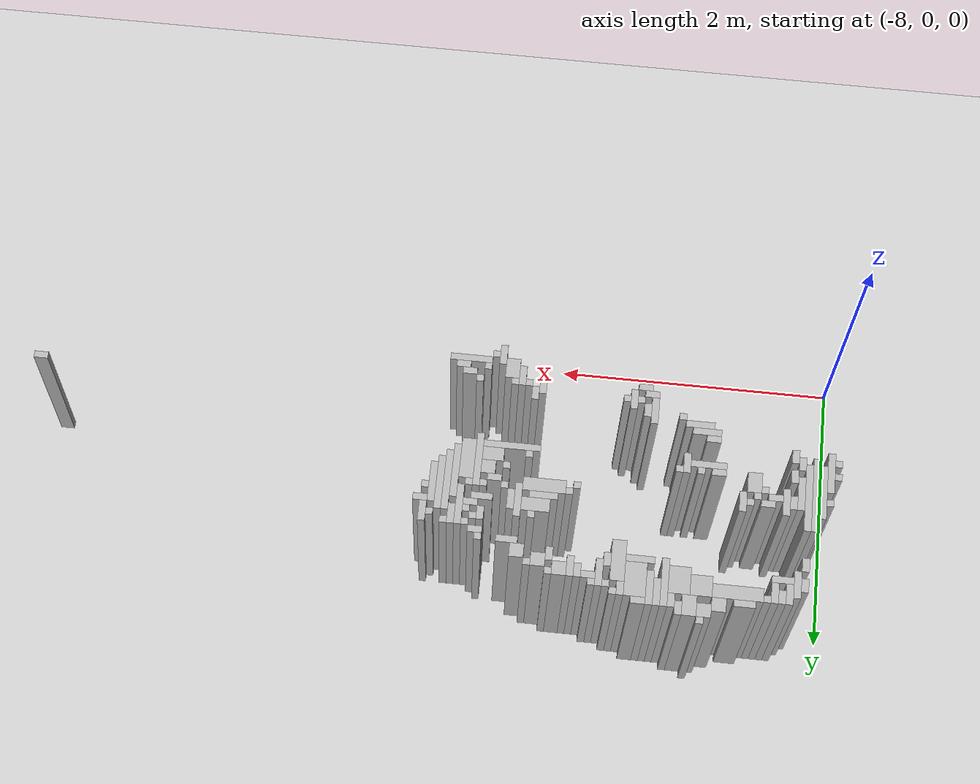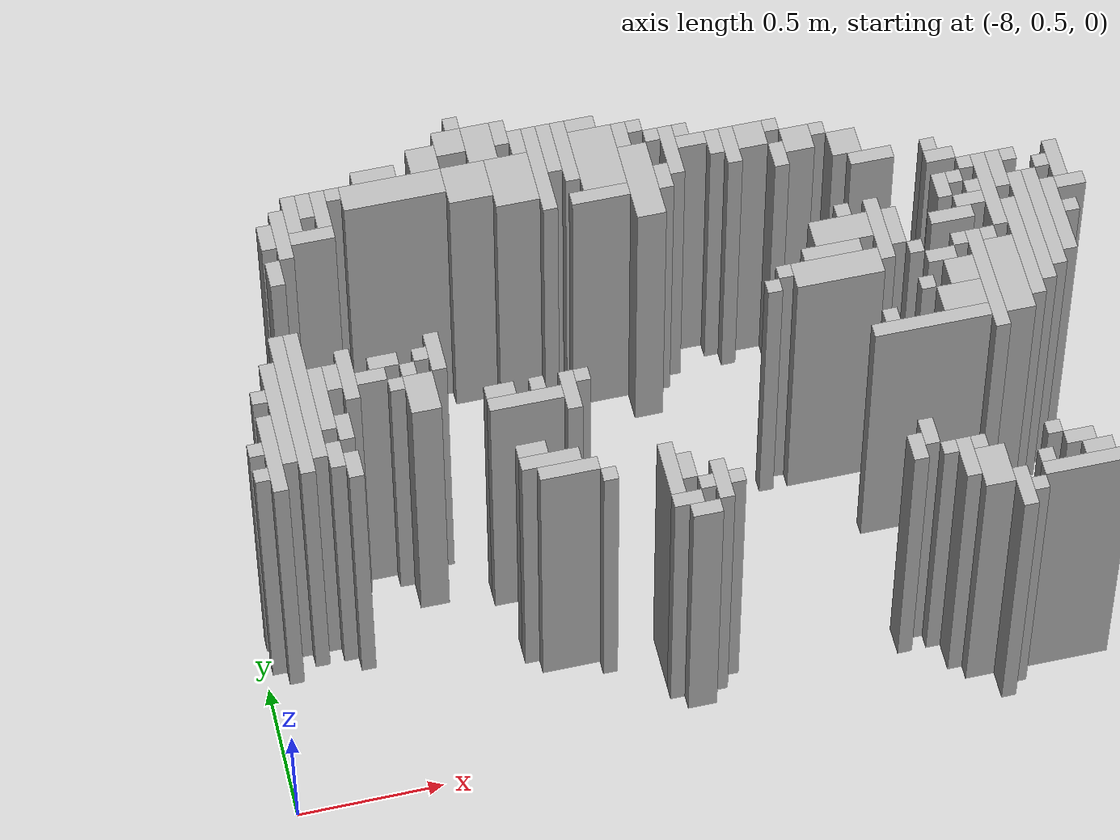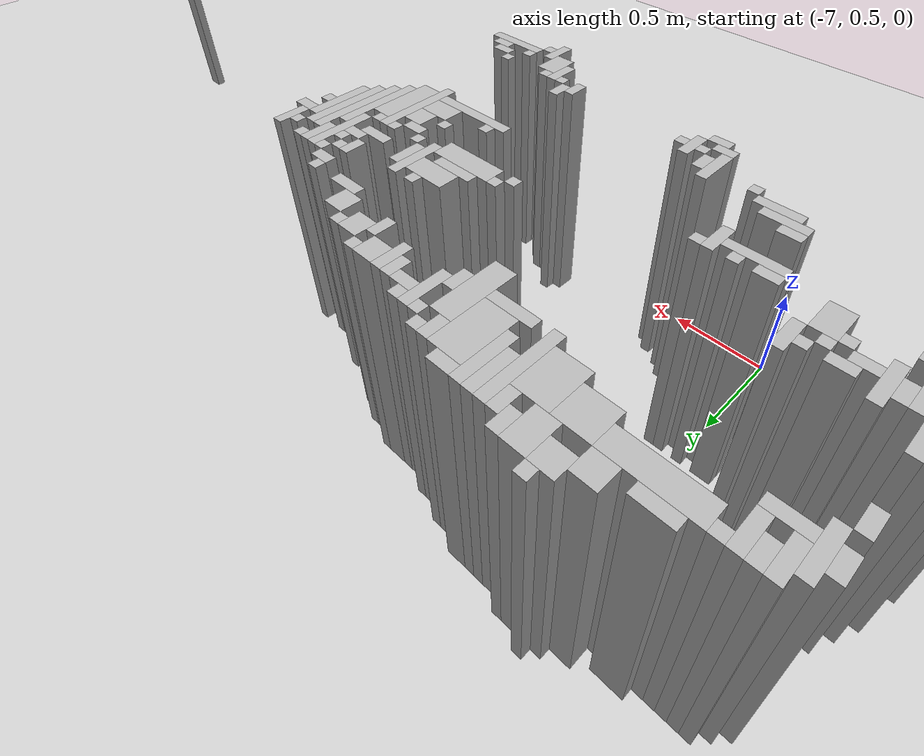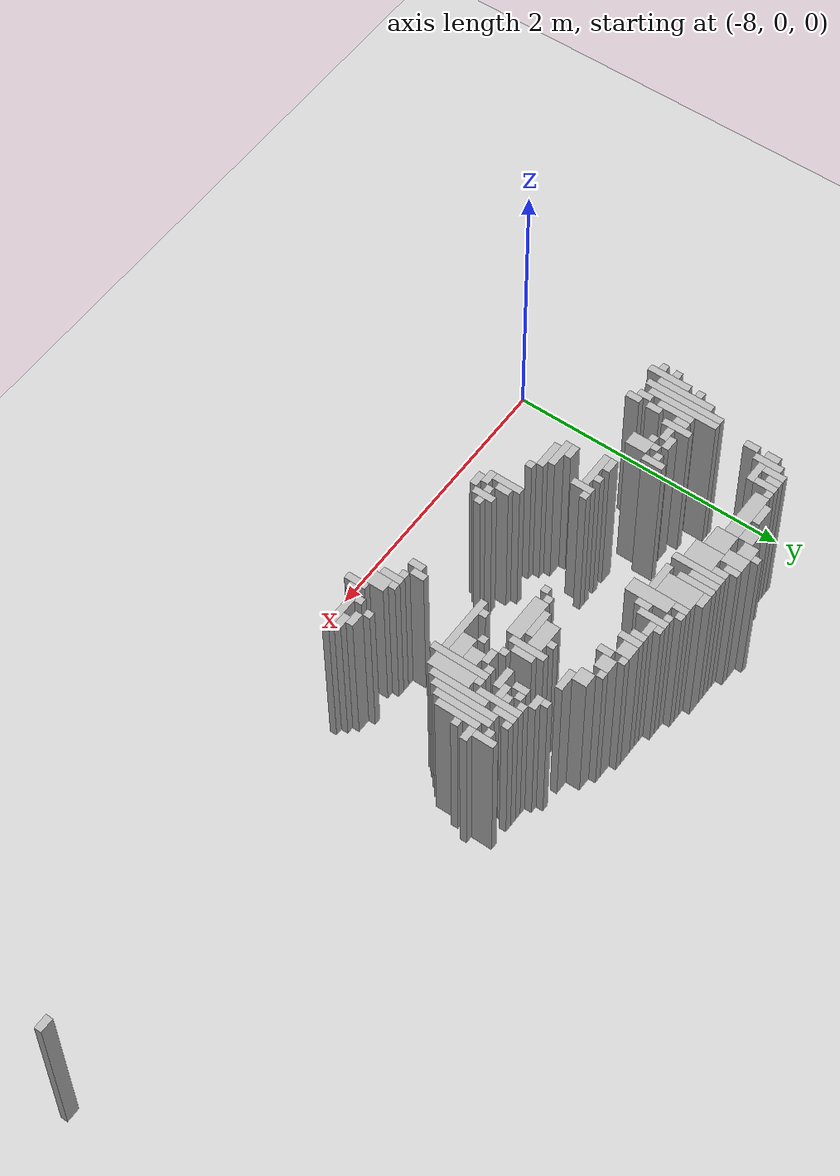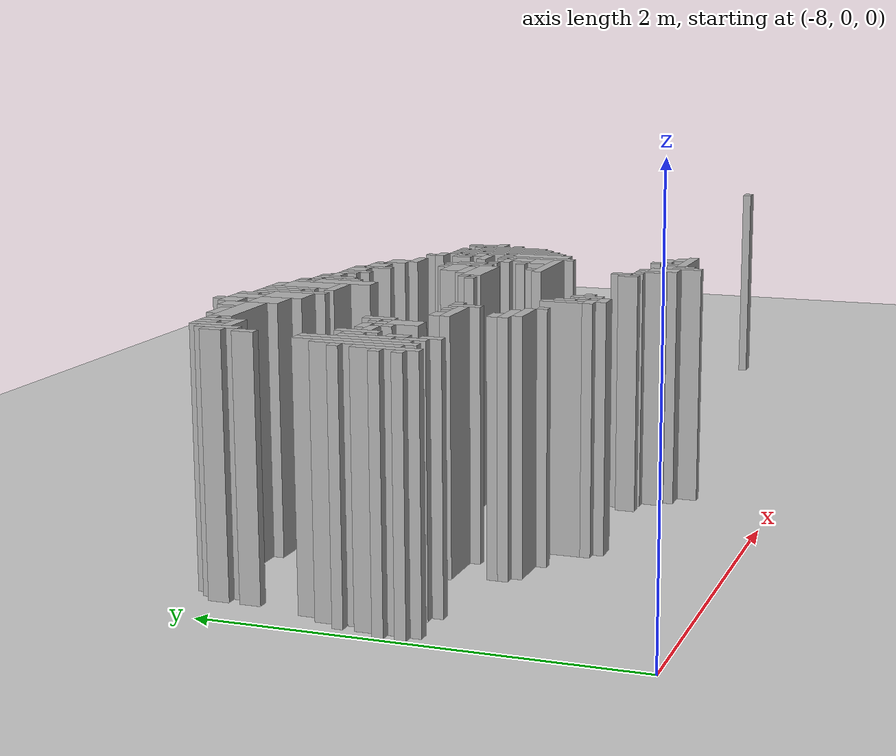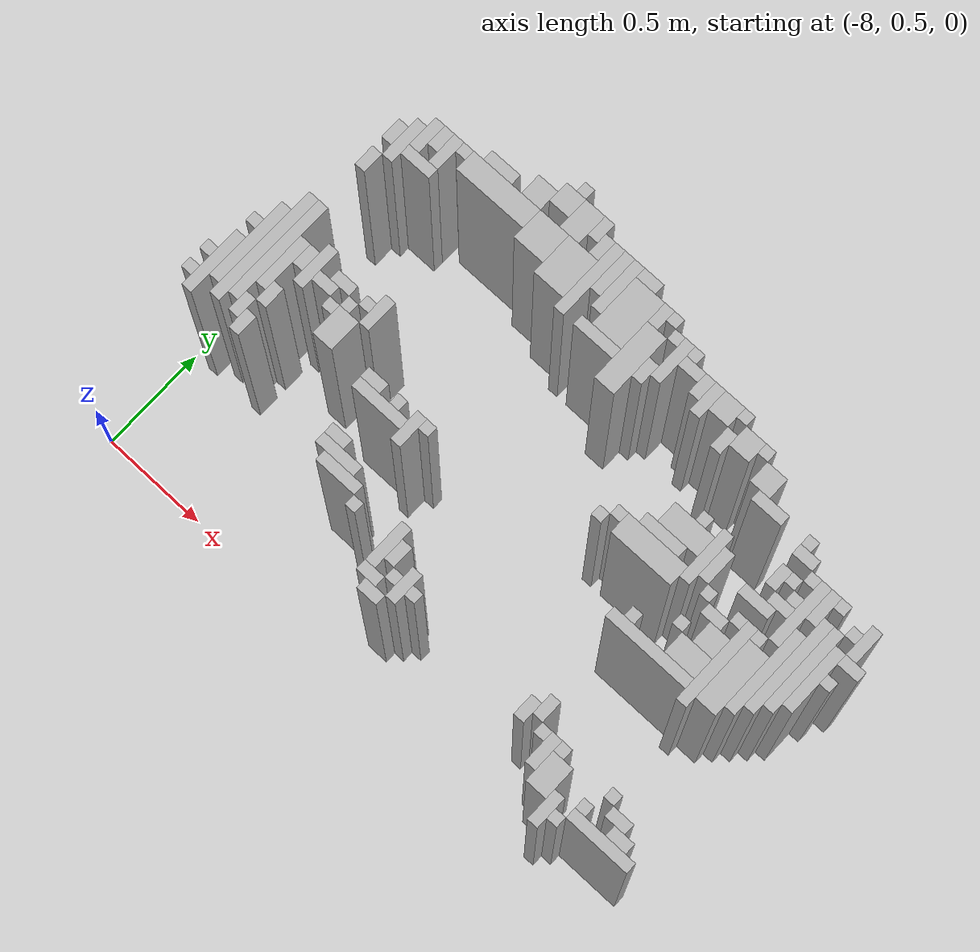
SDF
<sdf version="1.6">
 <world name="d10_floor">
  <include><uri>model://sun</uri></include>
  <include><uri>model://ground_plane</uri></include>
  <model name="d10_walls">
   <static>true</static>
   <link name="w1544">
    <pose>-5.550 0.480 0.60 0 0 0</pose>
    <collision name="c"><geometry><box><size>0.050 0.150 1.20</size></box></geometry></collision>
    <visual name="v">
     <geometry><box><size>0.050 0.150 1.20</size></box></geometry>
     <material><ambient>0.6 0.6 0.6 1</ambient><diffuse>0.7 0.7 0.7 1</diffuse></material>
    </visual>
   </link>
   <link name="w1545">
    <pose>-5.500 0.480 0.60 0 0 0</pose>
    <collision name="c"><geometry><box><size>0.050 0.050 1.20</size></box></geometry></collision>
    <visual name="v">
     <geometry><box><size>0.050 0.050 1.20</size></box></geometry>
     <material><ambient>0.6 0.6 0.6 1</ambient><diffuse>0.7 0.7 0.7 1</diffuse></material>
    </visual>
   </link>
   <link name="w1547">
    <pose>-5.625 0.580 0.60 0 0 0</pose>
    <collision name="c"><geometry><box><size>0.100 0.150 1.20</size></box></geometry></collision>
    <visual name="v">
     <geometry><box><size>0.100 0.150 1.20</size></box></geometry>
     <material><ambient>0.6 0.6 0.6 1</ambient><diffuse>0.7 0.7 0.7 1</diffuse></material>
    </visual>
   </link>
   <link name="w1548">
    <pose>-5.325 0.530 0.60 0 0 0</pose>
    <collision name="c"><geometry><box><size>0.300 0.050 1.20</size></box></geometry></collision>
    <visual name="v">
     <geometry><box><size>0.300 0.050 1.20</size></box></geometry>
     <material><ambient>0.6 0.6 0.6 1</ambient><diffuse>0.7 0.7 0.7 1</diffuse></material>
    </visual>
   </link>
   <link name="w1551">
    <pose>-5.700 0.630 0.60 0 0 0</pose>
    <collision name="c"><geometry><box><size>0.050 0.150 1.20</size></box></geometry></collision>
    <visual name="v">
     <geometry><box><size>0.050 0.150 1.20</size></box></geometry>
     <material><ambient>0.6 0.6 0.6 1</ambient><diffuse>0.7 0.7 0.7 1</diffuse></material>
    </visual>
   </link>
   <link name="w1552">
    <pose>-5.450 0.580 0.60 0 0 0</pose>
    <collision name="c"><geometry><box><size>0.050 0.050 1.20</size></box></geometry></collision>
    <visual name="v">
     <geometry><box><size>0.050 0.050 1.20</size></box></geometry>
     <material><ambient>0.6 0.6 0.6 1</ambient><diffuse>0.7 0.7 0.7 1</diffuse></material>
    </visual>
   </link>
   <link name="w1553">
    <pose>-5.275 0.580 0.60 0 0 0</pose>
    <collision name="c"><geometry><box><size>0.100 0.050 1.20</size></box></geometry></collision>
    <visual name="v">
     <geometry><box><size>0.100 0.050 1.20</size></box></geometry>
     <material><ambient>0.6 0.6 0.6 1</ambient><diffuse>0.7 0.7 0.7 1</diffuse></material>
    </visual>
   </link>
   <link name="w1559">
    <pose>-6.575 0.630 0.60 0 0 0</pose>
    <collision name="c"><geometry><box><size>0.100 0.050 1.20</size></box></geometry></collision>
    <visual name="v">
     <geometry><box><size>0.100 0.050 1.20</size></box></geometry>
     <material><ambient>0.6 0.6 0.6 1</ambient><diffuse>0.7 0.7 0.7 1</diffuse></material>
    </visual>
   </link>
   <link name="w1560">
    <pose>-5.325 0.630 0.60 0 0 0</pose>
    <collision name="c"><geometry><box><size>0.100 0.050 1.20</size></box></geometry></collision>
    <visual name="v">
     <geometry><box><size>0.100 0.050 1.20</size></box></geometry>
     <material><ambient>0.6 0.6 0.6 1</ambient><diffuse>0.7 0.7 0.7 1</diffuse></material>
    </visual>
   </link>
   <link name="w1568">
    <pose>-6.625 0.680 0.60 0 0 0</pose>
    <collision name="c"><geometry><box><size>0.100 0.050 1.20</size></box></geometry></collision>
    <visual name="v">
     <geometry><box><size>0.100 0.050 1.20</size></box></geometry>
     <material><ambient>0.6 0.6 0.6 1</ambient><diffuse>0.7 0.7 0.7 1</diffuse></material>
    </visual>
   </link>
   <link name="w1569">
    <pose>-6.500 0.730 0.60 0 0 0</pose>
    <collision name="c"><geometry><box><size>0.050 0.150 1.20</size></box></geometry></collision>
    <visual name="v">
     <geometry><box><size>0.050 0.150 1.20</size></box></geometry>
     <material><ambient>0.6 0.6 0.6 1</ambient><diffuse>0.7 0.7 0.7 1</diffuse></material>
    </visual>
   </link>
   <link name="w1570">
    <pose>-5.850 0.705 0.60 0 0 0</pose>
    <collision name="c"><geometry><box><size>0.050 0.100 1.20</size></box></geometry></collision>
    <visual name="v">
     <geometry><box><size>0.050 0.100 1.20</size></box></geometry>
     <material><ambient>0.6 0.6 0.6 1</ambient><diffuse>0.7 0.7 0.7 1</diffuse></material>
    </visual>
   </link>
   <link name="w1571">
    <pose>-5.750 0.680 0.60 0 0 0</pose>
    <collision name="c"><geometry><box><size>0.050 0.050 1.20</size></box></geometry></collision>
    <visual name="v">
     <geometry><box><size>0.050 0.050 1.20</size></box></geometry>
     <material><ambient>0.6 0.6 0.6 1</ambient><diffuse>0.7 0.7 0.7 1</diffuse></material>
    </visual>
   </link>
   <link name="w1572">
    <pose>-5.650 0.680 0.60 0 0 0</pose>
    <collision name="c"><geometry><box><size>0.050 0.050 1.20</size></box></geometry></collision>
    <visual name="v">
     <geometry><box><size>0.050 0.050 1.20</size></box></geometry>
     <material><ambient>0.6 0.6 0.6 1</ambient><diffuse>0.7 0.7 0.7 1</diffuse></material>
    </visual>
   </link>
   <link name="w1573">
    <pose>-5.400 0.680 0.60 0 0 0</pose>
    <collision name="c"><geometry><box><size>0.050 0.050 1.20</size></box></geometry></collision>
    <visual name="v">
     <geometry><box><size>0.050 0.050 1.20</size></box></geometry>
     <material><ambient>0.6 0.6 0.6 1</ambient><diffuse>0.7 0.7 0.7 1</diffuse></material>
    </visual>
   </link>
   <link name="w1576">
    <pose>-6.650 0.805 0.60 0 0 0</pose>
    <collision name="c"><geometry><box><size>0.050 0.200 1.20</size></box></geometry></collision>
    <visual name="v">
     <geometry><box><size>0.050 0.200 1.20</size></box></geometry>
     <material><ambient>0.6 0.6 0.6 1</ambient><diffuse>0.7 0.7 0.7 1</diffuse></material>
    </visual>
   </link>
   <link name="w1577">
    <pose>-6.550 0.730 0.60 0 0 0</pose>
    <collision name="c"><geometry><box><size>0.050 0.050 1.20</size></box></geometry></collision>
    <visual name="v">
     <geometry><box><size>0.050 0.050 1.20</size></box></geometry>
     <material><ambient>0.6 0.6 0.6 1</ambient><diffuse>0.7 0.7 0.7 1</diffuse></material>
    </visual>
   </link>
   <link name="w1578">
    <pose>-6.450 0.730 0.60 0 0 0</pose>
    <collision name="c"><geometry><box><size>0.050 0.050 1.20</size></box></geometry></collision>
    <visual name="v">
     <geometry><box><size>0.050 0.050 1.20</size></box></geometry>
     <material><ambient>0.6 0.6 0.6 1</ambient><diffuse>0.7 0.7 0.7 1</diffuse></material>
    </visual>
   </link>
   <link name="w1579">
    <pose>-5.800 0.755 0.60 0 0 0</pose>
    <collision name="c"><geometry><box><size>0.050 0.100 1.20</size></box></geometry></collision>
    <visual name="v">
     <geometry><box><size>0.050 0.100 1.20</size></box></geometry>
     <material><ambient>0.6 0.6 0.6 1</ambient><diffuse>0.7 0.7 0.7 1</diffuse></material>
    </visual>
   </link>
   <link name="w1584">
    <pose>-6.600 0.805 0.60 0 0 0</pose>
    <collision name="c"><geometry><box><size>0.050 0.100 1.20</size></box></geometry></collision>
    <visual name="v">
     <geometry><box><size>0.050 0.100 1.20</size></box></geometry>
     <material><ambient>0.6 0.6 0.6 1</ambient><diffuse>0.7 0.7 0.7 1</diffuse></material>
    </visual>
   </link>
   <link name="w1591">
    <pose>-6.850 0.830 0.60 0 0 0</pose>
    <collision name="c"><geometry><box><size>0.050 0.050 1.20</size></box></geometry></collision>
    <visual name="v">
     <geometry><box><size>0.050 0.050 1.20</size></box></geometry>
     <material><ambient>0.6 0.6 0.6 1</ambient><diffuse>0.7 0.7 0.7 1</diffuse></material>
    </visual>
   </link>
   <link name="w1592">
    <pose>-2.275 0.830 0.60 0 0 0</pose>
    <collision name="c"><geometry><box><size>0.100 0.050 1.20</size></box></geometry></collision>
    <visual name="v">
     <geometry><box><size>0.100 0.050 1.20</size></box></geometry>
     <material><ambient>0.6 0.6 0.6 1</ambient><diffuse>0.7 0.7 0.7 1</diffuse></material>
    </visual>
   </link>
   <link name="w1599">
    <pose>-6.975 0.880 0.60 0 0 0</pose>
    <collision name="c"><geometry><box><size>0.200 0.050 1.20</size></box></geometry></collision>
    <visual name="v">
     <geometry><box><size>0.200 0.050 1.20</size></box></geometry>
     <material><ambient>0.6 0.6 0.6 1</ambient><diffuse>0.7 0.7 0.7 1</diffuse></material>
    </visual>
   </link>
   <link name="w1609">
    <pose>-7.025 0.930 0.60 0 0 0</pose>
    <collision name="c"><geometry><box><size>0.200 0.050 1.20</size></box></geometry></collision>
    <visual name="v">
     <geometry><box><size>0.200 0.050 1.20</size></box></geometry>
     <material><ambient>0.6 0.6 0.6 1</ambient><diffuse>0.7 0.7 0.7 1</diffuse></material>
    </visual>
   </link>
   <link name="w1621">
    <pose>-7.075 0.980 0.60 0 0 0</pose>
    <collision name="c"><geometry><box><size>0.100 0.050 1.20</size></box></geometry></collision>
    <visual name="v">
     <geometry><box><size>0.100 0.050 1.20</size></box></geometry>
     <material><ambient>0.6 0.6 0.6 1</ambient><diffuse>0.7 0.7 0.7 1</diffuse></material>
    </visual>
   </link>
   <link name="w1634">
    <pose>-7.900 1.155 0.60 0 0 0</pose>
    <collision name="c"><geometry><box><size>0.050 0.300 1.20</size></box></geometry></collision>
    <visual name="v">
     <geometry><box><size>0.050 0.300 1.20</size></box></geometry>
     <material><ambient>0.6 0.6 0.6 1</ambient><diffuse>0.7 0.7 0.7 1</diffuse></material>
    </visual>
   </link>
   <link name="w1635">
    <pose>-7.650 1.055 0.60 0 0 0</pose>
    <collision name="c"><geometry><box><size>0.050 0.100 1.20</size></box></geometry></collision>
    <visual name="v">
     <geometry><box><size>0.050 0.100 1.20</size></box></geometry>
     <material><ambient>0.6 0.6 0.6 1</ambient><diffuse>0.7 0.7 0.7 1</diffuse></material>
    </visual>
   </link>
   <link name="w1644">
    <pose>-7.950 1.080 0.60 0 0 0</pose>
    <collision name="c"><geometry><box><size>0.050 0.050 1.20</size></box></geometry></collision>
    <visual name="v">
     <geometry><box><size>0.050 0.050 1.20</size></box></geometry>
     <material><ambient>0.6 0.6 0.6 1</ambient><diffuse>0.7 0.7 0.7 1</diffuse></material>
    </visual>
   </link>
   <link name="w1645">
    <pose>-7.800 1.330 0.60 0 0 0</pose>
    <collision name="c"><geometry><box><size>0.050 0.550 1.20</size></box></geometry></collision>
    <visual name="v">
     <geometry><box><size>0.050 0.550 1.20</size></box></geometry>
     <material><ambient>0.6 0.6 0.6 1</ambient><diffuse>0.7 0.7 0.7 1</diffuse></material>
    </visual>
   </link>
   <link name="w1646">
    <pose>-7.700 1.105 0.60 0 0 0</pose>
    <collision name="c"><geometry><box><size>0.050 0.100 1.20</size></box></geometry></collision>
    <visual name="v">
     <geometry><box><size>0.050 0.100 1.20</size></box></geometry>
     <material><ambient>0.6 0.6 0.6 1</ambient><diffuse>0.7 0.7 0.7 1</diffuse></material>
    </visual>
   </link>
   <link name="w1655">
    <pose>-7.850 1.305 0.60 0 0 0</pose>
    <collision name="c"><geometry><box><size>0.050 0.400 1.20</size></box></geometry></collision>
    <visual name="v">
     <geometry><box><size>0.050 0.400 1.20</size></box></geometry>
     <material><ambient>0.6 0.6 0.6 1</ambient><diffuse>0.7 0.7 0.7 1</diffuse></material>
    </visual>
   </link>
   <link name="w1656">
    <pose>-7.750 1.355 0.60 0 0 0</pose>
    <collision name="c"><geometry><box><size>0.050 0.500 1.20</size></box></geometry></collision>
    <visual name="v">
     <geometry><box><size>0.050 0.500 1.20</size></box></geometry>
     <material><ambient>0.6 0.6 0.6 1</ambient><diffuse>0.7 0.7 0.7 1</diffuse></material>
    </visual>
   </link>
   <link name="w1657">
    <pose>-6.900 1.180 0.60 0 0 0</pose>
    <collision name="c"><geometry><box><size>0.050 0.150 1.20</size></box></geometry></collision>
    <visual name="v">
     <geometry><box><size>0.050 0.150 1.20</size></box></geometry>
     <material><ambient>0.6 0.6 0.6 1</ambient><diffuse>0.7 0.7 0.7 1</diffuse></material>
    </visual>
   </link>
   <link name="w1658">
    <pose>-5.450 1.305 0.60 0 0 0</pose>
    <collision name="c"><geometry><box><size>0.050 0.400 1.20</size></box></geometry></collision>
    <visual name="v">
     <geometry><box><size>0.050 0.400 1.20</size></box></geometry>
     <material><ambient>0.6 0.6 0.6 1</ambient><diffuse>0.7 0.7 0.7 1</diffuse></material>
    </visual>
   </link>
   <link name="w1664">
    <pose>-7.950 1.180 0.60 0 0 0</pose>
    <collision name="c"><geometry><box><size>0.050 0.050 1.20</size></box></geometry></collision>
    <visual name="v">
     <geometry><box><size>0.050 0.050 1.20</size></box></geometry>
     <material><ambient>0.6 0.6 0.6 1</ambient><diffuse>0.7 0.7 0.7 1</diffuse></material>
    </visual>
   </link>
   <link name="w1665">
    <pose>-7.650 1.205 0.60 0 0 0</pose>
    <collision name="c"><geometry><box><size>0.050 0.100 1.20</size></box></geometry></collision>
    <visual name="v">
     <geometry><box><size>0.050 0.100 1.20</size></box></geometry>
     <material><ambient>0.6 0.6 0.6 1</ambient><diffuse>0.7 0.7 0.7 1</diffuse></material>
    </visual>
   </link>
   <link name="w1666">
    <pose>-7.050 1.180 0.60 0 0 0</pose>
    <collision name="c"><geometry><box><size>0.250 0.050 1.20</size></box></geometry></collision>
    <visual name="v">
     <geometry><box><size>0.250 0.050 1.20</size></box></geometry>
     <material><ambient>0.6 0.6 0.6 1</ambient><diffuse>0.7 0.7 0.7 1</diffuse></material>
    </visual>
   </link>
   <link name="w1667">
    <pose>-5.675 1.180 0.60 0 0 0</pose>
    <collision name="c"><geometry><box><size>0.400 0.050 1.20</size></box></geometry></collision>
    <visual name="v">
     <geometry><box><size>0.400 0.050 1.20</size></box></geometry>
     <material><ambient>0.6 0.6 0.6 1</ambient><diffuse>0.7 0.7 0.7 1</diffuse></material>
    </visual>
   </link>
   <link name="w1668">
    <pose>-5.375 1.305 0.60 0 0 0</pose>
    <collision name="c"><geometry><box><size>0.100 0.300 1.20</size></box></geometry></collision>
    <visual name="v">
     <geometry><box><size>0.100 0.300 1.20</size></box></geometry>
     <material><ambient>0.6 0.6 0.6 1</ambient><diffuse>0.7 0.7 0.7 1</diffuse></material>
    </visual>
   </link>
   <link name="w1675">
    <pose>-7.700 1.330 0.60 0 0 0</pose>
    <collision name="c"><geometry><box><size>0.050 0.250 1.20</size></box></geometry></collision>
    <visual name="v">
     <geometry><box><size>0.050 0.250 1.20</size></box></geometry>
     <material><ambient>0.6 0.6 0.6 1</ambient><diffuse>0.7 0.7 0.7 1</diffuse></material>
    </visual>
   </link>
   <link name="w1676">
    <pose>-7.375 1.280 0.60 0 0 0</pose>
    <collision name="c"><geometry><box><size>0.100 0.150 1.20</size></box></geometry></collision>
    <visual name="v">
     <geometry><box><size>0.100 0.150 1.20</size></box></geometry>
     <material><ambient>0.6 0.6 0.6 1</ambient><diffuse>0.7 0.7 0.7 1</diffuse></material>
    </visual>
   </link>
   <link name="w1677">
    <pose>-7.125 1.230 0.60 0 0 0</pose>
    <collision name="c"><geometry><box><size>0.100 0.050 1.20</size></box></geometry></collision>
    <visual name="v">
     <geometry><box><size>0.100 0.050 1.20</size></box></geometry>
     <material><ambient>0.6 0.6 0.6 1</ambient><diffuse>0.7 0.7 0.7 1</diffuse></material>
    </visual>
   </link>
   <link name="w1678">
    <pose>-7.000 1.230 0.60 0 0 0</pose>
    <collision name="c"><geometry><box><size>0.050 0.050 1.20</size></box></geometry></collision>
    <visual name="v">
     <geometry><box><size>0.050 0.050 1.20</size></box></geometry>
     <material><ambient>0.6 0.6 0.6 1</ambient><diffuse>0.7 0.7 0.7 1</diffuse></material>
    </visual>
   </link>
   <link name="w1679">
    <pose>-6.850 1.230 0.60 0 0 0</pose>
    <collision name="c"><geometry><box><size>0.050 0.050 1.20</size></box></geometry></collision>
    <visual name="v">
     <geometry><box><size>0.050 0.050 1.20</size></box></geometry>
     <material><ambient>0.6 0.6 0.6 1</ambient><diffuse>0.7 0.7 0.7 1</diffuse></material>
    </visual>
   </link>
   <link name="w1680">
    <pose>-5.800 1.230 0.60 0 0 0</pose>
    <collision name="c"><geometry><box><size>0.050 0.050 1.20</size></box></geometry></collision>
    <visual name="v">
     <geometry><box><size>0.050 0.050 1.20</size></box></geometry>
     <material><ambient>0.6 0.6 0.6 1</ambient><diffuse>0.7 0.7 0.7 1</diffuse></material>
    </visual>
   </link>
   <link name="w1681">
    <pose>-5.550 1.255 0.60 0 0 0</pose>
    <collision name="c"><geometry><box><size>0.150 0.100 1.20</size></box></geometry></collision>
    <visual name="v">
     <geometry><box><size>0.150 0.100 1.20</size></box></geometry>
     <material><ambient>0.6 0.6 0.6 1</ambient><diffuse>0.7 0.7 0.7 1</diffuse></material>
    </visual>
   </link>
   <link name="w1682">
    <pose>-5.300 1.405 0.60 0 0 0</pose>
    <collision name="c"><geometry><box><size>0.050 0.400 1.20</size></box></geometry></collision>
    <visual name="v">
     <geometry><box><size>0.050 0.400 1.20</size></box></geometry>
     <material><ambient>0.6 0.6 0.6 1</ambient><diffuse>0.7 0.7 0.7 1</diffuse></material>
    </visual>
   </link>
   <link name="w1692">
    <pose>-5.250 1.480 0.60 0 0 0</pose>
    <collision name="c"><geometry><box><size>0.050 0.450 1.20</size></box></geometry></collision>
    <visual name="v">
     <geometry><box><size>0.050 0.450 1.20</size></box></geometry>
     <material><ambient>0.6 0.6 0.6 1</ambient><diffuse>0.7 0.7 0.7 1</diffuse></material>
    </visual>
   </link>
   <link name="w1705">
    <pose>-7.600 1.405 0.60 0 0 0</pose>
    <collision name="c"><geometry><box><size>0.050 0.200 1.20</size></box></geometry></collision>
    <visual name="v">
     <geometry><box><size>0.050 0.200 1.20</size></box></geometry>
     <material><ambient>0.6 0.6 0.6 1</ambient><diffuse>0.7 0.7 0.7 1</diffuse></material>
    </visual>
   </link>
   <link name="w1706">
    <pose>-7.450 1.330 0.60 0 0 0</pose>
    <collision name="c"><geometry><box><size>0.050 0.050 1.20</size></box></geometry></collision>
    <visual name="v">
     <geometry><box><size>0.050 0.050 1.20</size></box></geometry>
     <material><ambient>0.6 0.6 0.6 1</ambient><diffuse>0.7 0.7 0.7 1</diffuse></material>
    </visual>
   </link>
   <link name="w1707">
    <pose>-5.650 1.330 0.60 0 0 0</pose>
    <collision name="c"><geometry><box><size>0.050 0.050 1.20</size></box></geometry></collision>
    <visual name="v">
     <geometry><box><size>0.050 0.050 1.20</size></box></geometry>
     <material><ambient>0.6 0.6 0.6 1</ambient><diffuse>0.7 0.7 0.7 1</diffuse></material>
    </visual>
   </link>
   <link name="w1708">
    <pose>-5.525 1.355 0.60 0 0 0</pose>
    <collision name="c"><geometry><box><size>0.100 0.100 1.20</size></box></geometry></collision>
    <visual name="v">
     <geometry><box><size>0.100 0.100 1.20</size></box></geometry>
     <material><ambient>0.6 0.6 0.6 1</ambient><diffuse>0.7 0.7 0.7 1</diffuse></material>
    </visual>
   </link>
   <link name="w1709">
    <pose>-5.200 1.505 0.60 0 0 0</pose>
    <collision name="c"><geometry><box><size>0.050 0.400 1.20</size></box></geometry></collision>
    <visual name="v">
     <geometry><box><size>0.050 0.400 1.20</size></box></geometry>
     <material><ambient>0.6 0.6 0.6 1</ambient><diffuse>0.7 0.7 0.7 1</diffuse></material>
    </visual>
   </link>
   <link name="w1717">
    <pose>-7.900 1.380 0.60 0 0 0</pose>
    <collision name="c"><geometry><box><size>0.050 0.050 1.20</size></box></geometry></collision>
    <visual name="v">
     <geometry><box><size>0.050 0.050 1.20</size></box></geometry>
     <material><ambient>0.6 0.6 0.6 1</ambient><diffuse>0.7 0.7 0.7 1</diffuse></material>
    </visual>
   </link>
   <link name="w1718">
    <pose>-7.650 1.405 0.60 0 0 0</pose>
    <collision name="c"><geometry><box><size>0.050 0.100 1.20</size></box></geometry></collision>
    <visual name="v">
     <geometry><box><size>0.050 0.100 1.20</size></box></geometry>
     <material><ambient>0.6 0.6 0.6 1</ambient><diffuse>0.7 0.7 0.7 1</diffuse></material>
    </visual>
   </link>
   <link name="w1719">
    <pose>-7.525 1.380 0.60 0 0 0</pose>
    <collision name="c"><geometry><box><size>0.100 0.050 1.20</size></box></geometry></collision>
    <visual name="v">
     <geometry><box><size>0.100 0.050 1.20</size></box></geometry>
     <material><ambient>0.6 0.6 0.6 1</ambient><diffuse>0.7 0.7 0.7 1</diffuse></material>
    </visual>
   </link>
   <link name="w1720">
    <pose>-7.400 1.380 0.60 0 0 0</pose>
    <collision name="c"><geometry><box><size>0.050 0.050 1.20</size></box></geometry></collision>
    <visual name="v">
     <geometry><box><size>0.050 0.050 1.20</size></box></geometry>
     <material><ambient>0.6 0.6 0.6 1</ambient><diffuse>0.7 0.7 0.7 1</diffuse></material>
    </visual>
   </link>
   <link name="w1721">
    <pose>-7.300 1.430 0.60 0 0 0</pose>
    <collision name="c"><geometry><box><size>0.050 0.150 1.20</size></box></geometry></collision>
    <visual name="v">
     <geometry><box><size>0.050 0.150 1.20</size></box></geometry>
     <material><ambient>0.6 0.6 0.6 1</ambient><diffuse>0.7 0.7 0.7 1</diffuse></material>
    </visual>
   </link>
   <link name="w1722">
    <pose>-5.150 1.505 0.60 0 0 0</pose>
    <collision name="c"><geometry><box><size>0.050 0.300 1.20</size></box></geometry></collision>
    <visual name="v">
     <geometry><box><size>0.050 0.300 1.20</size></box></geometry>
     <material><ambient>0.6 0.6 0.6 1</ambient><diffuse>0.7 0.7 0.7 1</diffuse></material>
    </visual>
   </link>
   <link name="w1728">
    <pose>-7.475 1.430 0.60 0 0 0</pose>
    <collision name="c"><geometry><box><size>0.100 0.050 1.20</size></box></geometry></collision>
    <visual name="v">
     <geometry><box><size>0.100 0.050 1.20</size></box></geometry>
     <material><ambient>0.6 0.6 0.6 1</ambient><diffuse>0.7 0.7 0.7 1</diffuse></material>
    </visual>
   </link>
   <link name="w1729">
    <pose>-7.350 1.430 0.60 0 0 0</pose>
    <collision name="c"><geometry><box><size>0.050 0.050 1.20</size></box></geometry></collision>
    <visual name="v">
     <geometry><box><size>0.050 0.050 1.20</size></box></geometry>
     <material><ambient>0.6 0.6 0.6 1</ambient><diffuse>0.7 0.7 0.7 1</diffuse></material>
    </visual>
   </link>
   <link name="w1730">
    <pose>-6.150 1.430 0.60 0 0 0</pose>
    <collision name="c"><geometry><box><size>0.050 0.050 1.20</size></box></geometry></collision>
    <visual name="v">
     <geometry><box><size>0.050 0.050 1.20</size></box></geometry>
     <material><ambient>0.6 0.6 0.6 1</ambient><diffuse>0.7 0.7 0.7 1</diffuse></material>
    </visual>
   </link>
   <link name="w1731">
    <pose>-5.925 1.455 0.60 0 0 0</pose>
    <collision name="c"><geometry><box><size>0.300 0.100 1.20</size></box></geometry></collision>
    <visual name="v">
     <geometry><box><size>0.300 0.100 1.20</size></box></geometry>
     <material><ambient>0.6 0.6 0.6 1</ambient><diffuse>0.7 0.7 0.7 1</diffuse></material>
    </visual>
   </link>
   <link name="w1732">
    <pose>-5.575 1.430 0.60 0 0 0</pose>
    <collision name="c"><geometry><box><size>0.100 0.050 1.20</size></box></geometry></collision>
    <visual name="v">
     <geometry><box><size>0.100 0.050 1.20</size></box></geometry>
     <material><ambient>0.6 0.6 0.6 1</ambient><diffuse>0.7 0.7 0.7 1</diffuse></material>
    </visual>
   </link>
   <link name="w1745">
    <pose>-6.100 1.480 0.60 0 0 0</pose>
    <collision name="c"><geometry><box><size>0.050 0.050 1.20</size></box></geometry></collision>
    <visual name="v">
     <geometry><box><size>0.050 0.050 1.20</size></box></geometry>
     <material><ambient>0.6 0.6 0.6 1</ambient><diffuse>0.7 0.7 0.7 1</diffuse></material>
    </visual>
   </link>
   <link name="w1746">
    <pose>-5.750 1.580 0.60 0 0 0</pose>
    <collision name="c"><geometry><box><size>0.050 0.250 1.20</size></box></geometry></collision>
    <visual name="v">
     <geometry><box><size>0.050 0.250 1.20</size></box></geometry>
     <material><ambient>0.6 0.6 0.6 1</ambient><diffuse>0.7 0.7 0.7 1</diffuse></material>
    </visual>
   </link>
   <link name="w1747">
    <pose>-5.650 1.480 0.60 0 0 0</pose>
    <collision name="c"><geometry><box><size>0.050 0.050 1.20</size></box></geometry></collision>
    <visual name="v">
     <geometry><box><size>0.050 0.050 1.20</size></box></geometry>
     <material><ambient>0.6 0.6 0.6 1</ambient><diffuse>0.7 0.7 0.7 1</diffuse></material>
    </visual>
   </link>
   <link name="w1748">
    <pose>-5.500 1.480 0.60 0 0 0</pose>
    <collision name="c"><geometry><box><size>0.050 0.050 1.20</size></box></geometry></collision>
    <visual name="v">
     <geometry><box><size>0.050 0.050 1.20</size></box></geometry>
     <material><ambient>0.6 0.6 0.6 1</ambient><diffuse>0.7 0.7 0.7 1</diffuse></material>
    </visual>
   </link>
   <link name="w1749">
    <pose>-5.400 1.480 0.60 0 0 0</pose>
    <collision name="c"><geometry><box><size>0.050 0.050 1.20</size></box></geometry></collision>
    <visual name="v">
     <geometry><box><size>0.050 0.050 1.20</size></box></geometry>
     <material><ambient>0.6 0.6 0.6 1</ambient><diffuse>0.7 0.7 0.7 1</diffuse></material>
    </visual>
   </link>
   <link name="w1767">
    <pose>-5.925 1.530 0.60 0 0 0</pose>
    <collision name="c"><geometry><box><size>0.200 0.050 1.20</size></box></geometry></collision>
    <visual name="v">
     <geometry><box><size>0.200 0.050 1.20</size></box></geometry>
     <material><ambient>0.6 0.6 0.6 1</ambient><diffuse>0.7 0.7 0.7 1</diffuse></material>
    </visual>
   </link>
   <link name="w1768">
    <pose>-5.700 1.580 0.60 0 0 0</pose>
    <collision name="c"><geometry><box><size>0.050 0.150 1.20</size></box></geometry></collision>
    <visual name="v">
     <geometry><box><size>0.050 0.150 1.20</size></box></geometry>
     <material><ambient>0.6 0.6 0.6 1</ambient><diffuse>0.7 0.7 0.7 1</diffuse></material>
    </visual>
   </link>
   <link name="w1769">
    <pose>-5.350 1.655 0.60 0 0 0</pose>
    <collision name="c"><geometry><box><size>0.050 0.300 1.20</size></box></geometry></collision>
    <visual name="v">
     <geometry><box><size>0.050 0.300 1.20</size></box></geometry>
     <material><ambient>0.6 0.6 0.6 1</ambient><diffuse>0.7 0.7 0.7 1</diffuse></material>
    </visual>
   </link>
   <link name="w1770">
    <pose>-5.100 1.530 0.60 0 0 0</pose>
    <collision name="c"><geometry><box><size>0.050 0.050 1.20</size></box></geometry></collision>
    <visual name="v">
     <geometry><box><size>0.050 0.050 1.20</size></box></geometry>
     <material><ambient>0.6 0.6 0.6 1</ambient><diffuse>0.7 0.7 0.7 1</diffuse></material>
    </visual>
   </link>
   <link name="w1785">
    <pose>-5.875 1.605 0.60 0 0 0</pose>
    <collision name="c"><geometry><box><size>0.200 0.100 1.20</size></box></geometry></collision>
    <visual name="v">
     <geometry><box><size>0.200 0.100 1.20</size></box></geometry>
     <material><ambient>0.6 0.6 0.6 1</ambient><diffuse>0.7 0.7 0.7 1</diffuse></material>
    </visual>
   </link>
   <link name="w1786">
    <pose>-5.500 1.580 0.60 0 0 0</pose>
    <collision name="c"><geometry><box><size>0.150 0.050 1.20</size></box></geometry></collision>
    <visual name="v">
     <geometry><box><size>0.150 0.050 1.20</size></box></geometry>
     <material><ambient>0.6 0.6 0.6 1</ambient><diffuse>0.7 0.7 0.7 1</diffuse></material>
    </visual>
   </link>
   <link name="w1796">
    <pose>-5.425 1.630 0.60 0 0 0</pose>
    <collision name="c"><geometry><box><size>0.100 0.050 1.20</size></box></geometry></collision>
    <visual name="v">
     <geometry><box><size>0.100 0.050 1.20</size></box></geometry>
     <material><ambient>0.6 0.6 0.6 1</ambient><diffuse>0.7 0.7 0.7 1</diffuse></material>
    </visual>
   </link>
   <link name="w1797">
    <pose>-5.075 1.630 0.60 0 0 0</pose>
    <collision name="c"><geometry><box><size>0.100 0.050 1.20</size></box></geometry></collision>
    <visual name="v">
     <geometry><box><size>0.100 0.050 1.20</size></box></geometry>
     <material><ambient>0.6 0.6 0.6 1</ambient><diffuse>0.7 0.7 0.7 1</diffuse></material>
    </visual>
   </link>
   <link name="w1804">
    <pose>-5.850 1.680 0.60 0 0 0</pose>
    <collision name="c"><geometry><box><size>0.050 0.050 1.20</size></box></geometry></collision>
    <visual name="v">
     <geometry><box><size>0.050 0.050 1.20</size></box></geometry>
     <material><ambient>0.6 0.6 0.6 1</ambient><diffuse>0.7 0.7 0.7 1</diffuse></material>
    </visual>
   </link>
   <link name="w1805">
    <pose>-5.500 1.705 0.60 0 0 0</pose>
    <collision name="c"><geometry><box><size>0.050 0.100 1.20</size></box></geometry></collision>
    <visual name="v">
     <geometry><box><size>0.050 0.100 1.20</size></box></geometry>
     <material><ambient>0.6 0.6 0.6 1</ambient><diffuse>0.7 0.7 0.7 1</diffuse></material>
    </visual>
   </link>
   <link name="w1806">
    <pose>-5.400 1.680 0.60 0 0 0</pose>
    <collision name="c"><geometry><box><size>0.050 0.050 1.20</size></box></geometry></collision>
    <visual name="v">
     <geometry><box><size>0.050 0.050 1.20</size></box></geometry>
     <material><ambient>0.6 0.6 0.6 1</ambient><diffuse>0.7 0.7 0.7 1</diffuse></material>
    </visual>
   </link>
   <link name="w1807">
    <pose>-5.300 1.730 0.60 0 0 0</pose>
    <collision name="c"><geometry><box><size>0.050 0.150 1.20</size></box></geometry></collision>
    <visual name="v">
     <geometry><box><size>0.050 0.150 1.20</size></box></geometry>
     <material><ambient>0.6 0.6 0.6 1</ambient><diffuse>0.7 0.7 0.7 1</diffuse></material>
    </visual>
   </link>
   <link name="w1808">
    <pose>-5.100 1.730 0.60 0 0 0</pose>
    <collision name="c"><geometry><box><size>0.050 0.150 1.20</size></box></geometry></collision>
    <visual name="v">
     <geometry><box><size>0.050 0.150 1.20</size></box></geometry>
     <material><ambient>0.6 0.6 0.6 1</ambient><diffuse>0.7 0.7 0.7 1</diffuse></material>
    </visual>
   </link>
   <link name="w1815">
    <pose>-5.450 1.730 0.60 0 0 0</pose>
    <collision name="c"><geometry><box><size>0.050 0.050 1.20</size></box></geometry></collision>
    <visual name="v">
     <geometry><box><size>0.050 0.050 1.20</size></box></geometry>
     <material><ambient>0.6 0.6 0.6 1</ambient><diffuse>0.7 0.7 0.7 1</diffuse></material>
    </visual>
   </link>
   <link name="w1816">
    <pose>-5.150 1.730 0.60 0 0 0</pose>
    <collision name="c"><geometry><box><size>0.050 0.050 1.20</size></box></geometry></collision>
    <visual name="v">
     <geometry><box><size>0.050 0.050 1.20</size></box></geometry>
     <material><ambient>0.6 0.6 0.6 1</ambient><diffuse>0.7 0.7 0.7 1</diffuse></material>
    </visual>
   </link>
   <link name="w1817">
    <pose>-5.400 1.780 0.60 0 0 0</pose>
    <collision name="c"><geometry><box><size>0.050 0.050 1.20</size></box></geometry></collision>
    <visual name="v">
     <geometry><box><size>0.050 0.050 1.20</size></box></geometry>
     <material><ambient>0.6 0.6 0.6 1</ambient><diffuse>0.7 0.7 0.7 1</diffuse></material>
    </visual>
   </link>
   <link name="w1818">
    <pose>-5.250 1.780 0.60 0 0 0</pose>
    <collision name="c"><geometry><box><size>0.050 0.050 1.20</size></box></geometry></collision>
    <visual name="v">
     <geometry><box><size>0.050 0.050 1.20</size></box></geometry>
     <material><ambient>0.6 0.6 0.6 1</ambient><diffuse>0.7 0.7 0.7 1</diffuse></material>
    </visual>
   </link>
   <link name="w1820">
    <pose>-7.750 1.855 0.60 0 0 0</pose>
    <collision name="c"><geometry><box><size>0.050 0.100 1.20</size></box></geometry></collision>
    <visual name="v">
     <geometry><box><size>0.050 0.100 1.20</size></box></geometry>
     <material><ambient>0.6 0.6 0.6 1</ambient><diffuse>0.7 0.7 0.7 1</diffuse></material>
    </visual>
   </link>
   <link name="w1821">
    <pose>-6.475 1.955 0.60 0 0 0</pose>
    <collision name="c"><geometry><box><size>0.100 0.300 1.20</size></box></geometry></collision>
    <visual name="v">
     <geometry><box><size>0.100 0.300 1.20</size></box></geometry>
     <material><ambient>0.6 0.6 0.6 1</ambient><diffuse>0.7 0.7 0.7 1</diffuse></material>
    </visual>
   </link>
   <link name="w1822">
    <pose>-5.475 1.830 0.60 0 0 0</pose>
    <collision name="c"><geometry><box><size>0.100 0.050 1.20</size></box></geometry></collision>
    <visual name="v">
     <geometry><box><size>0.100 0.050 1.20</size></box></geometry>
     <material><ambient>0.6 0.6 0.6 1</ambient><diffuse>0.7 0.7 0.7 1</diffuse></material>
    </visual>
   </link>
   <link name="w1824">
    <pose>-5.700 1.880 0.60 0 0 0</pose>
    <collision name="c"><geometry><box><size>0.150 0.050 1.20</size></box></geometry></collision>
    <visual name="v">
     <geometry><box><size>0.150 0.050 1.20</size></box></geometry>
     <material><ambient>0.6 0.6 0.6 1</ambient><diffuse>0.7 0.7 0.7 1</diffuse></material>
    </visual>
   </link>
   <link name="w1825">
    <pose>-5.500 1.880 0.60 0 0 0</pose>
    <collision name="c"><geometry><box><size>0.050 0.050 1.20</size></box></geometry></collision>
    <visual name="v">
     <geometry><box><size>0.050 0.050 1.20</size></box></geometry>
     <material><ambient>0.6 0.6 0.6 1</ambient><diffuse>0.7 0.7 0.7 1</diffuse></material>
    </visual>
   </link>
   <link name="w1826">
    <pose>-7.700 2.005 0.60 0 0 0</pose>
    <collision name="c"><geometry><box><size>0.050 0.200 1.20</size></box></geometry></collision>
    <visual name="v">
     <geometry><box><size>0.050 0.200 1.20</size></box></geometry>
     <material><ambient>0.6 0.6 0.6 1</ambient><diffuse>0.7 0.7 0.7 1</diffuse></material>
    </visual>
   </link>
   <link name="w1827">
    <pose>-6.800 2.080 0.60 0 0 0</pose>
    <collision name="c"><geometry><box><size>0.050 0.350 1.20</size></box></geometry></collision>
    <visual name="v">
     <geometry><box><size>0.050 0.350 1.20</size></box></geometry>
     <material><ambient>0.6 0.6 0.6 1</ambient><diffuse>0.7 0.7 0.7 1</diffuse></material>
    </visual>
   </link>
   <link name="w1828">
    <pose>-6.625 1.930 0.60 0 0 0</pose>
    <collision name="c"><geometry><box><size>0.200 0.050 1.20</size></box></geometry></collision>
    <visual name="v">
     <geometry><box><size>0.200 0.050 1.20</size></box></geometry>
     <material><ambient>0.6 0.6 0.6 1</ambient><diffuse>0.7 0.7 0.7 1</diffuse></material>
    </visual>
   </link>
   <link name="w1829">
    <pose>-6.400 1.955 0.60 0 0 0</pose>
    <collision name="c"><geometry><box><size>0.050 0.100 1.20</size></box></geometry></collision>
    <visual name="v">
     <geometry><box><size>0.050 0.100 1.20</size></box></geometry>
     <material><ambient>0.6 0.6 0.6 1</ambient><diffuse>0.7 0.7 0.7 1</diffuse></material>
    </visual>
   </link>
   <link name="w1830">
    <pose>-6.000 1.955 0.60 0 0 0</pose>
    <collision name="c"><geometry><box><size>0.050 0.100 1.20</size></box></geometry></collision>
    <visual name="v">
     <geometry><box><size>0.050 0.100 1.20</size></box></geometry>
     <material><ambient>0.6 0.6 0.6 1</ambient><diffuse>0.7 0.7 0.7 1</diffuse></material>
    </visual>
   </link>
   <link name="w1831">
    <pose>-5.775 1.955 0.60 0 0 0</pose>
    <collision name="c"><geometry><box><size>0.100 0.100 1.20</size></box></geometry></collision>
    <visual name="v">
     <geometry><box><size>0.100 0.100 1.20</size></box></geometry>
     <material><ambient>0.6 0.6 0.6 1</ambient><diffuse>0.7 0.7 0.7 1</diffuse></material>
    </visual>
   </link>
   <link name="w1833">
    <pose>-7.750 2.005 0.60 0 0 0</pose>
    <collision name="c"><geometry><box><size>0.050 0.100 1.20</size></box></geometry></collision>
    <visual name="v">
     <geometry><box><size>0.050 0.100 1.20</size></box></geometry>
     <material><ambient>0.6 0.6 0.6 1</ambient><diffuse>0.7 0.7 0.7 1</diffuse></material>
    </visual>
   </link>
   <link name="w1834">
    <pose>-7.600 1.980 0.60 0 0 0</pose>
    <collision name="c"><geometry><box><size>0.150 0.050 1.20</size></box></geometry></collision>
    <visual name="v">
     <geometry><box><size>0.150 0.050 1.20</size></box></geometry>
     <material><ambient>0.6 0.6 0.6 1</ambient><diffuse>0.7 0.7 0.7 1</diffuse></material>
    </visual>
   </link>
   <link name="w1835">
    <pose>-6.900 2.055 0.60 0 0 0</pose>
    <collision name="c"><geometry><box><size>0.150 0.200 1.20</size></box></geometry></collision>
    <visual name="v">
     <geometry><box><size>0.150 0.200 1.20</size></box></geometry>
     <material><ambient>0.6 0.6 0.6 1</ambient><diffuse>0.7 0.7 0.7 1</diffuse></material>
    </visual>
   </link>
   <link name="w1836">
    <pose>-6.600 2.080 0.60 0 0 0</pose>
    <collision name="c"><geometry><box><size>0.150 0.250 1.20</size></box></geometry></collision>
    <visual name="v">
     <geometry><box><size>0.150 0.250 1.20</size></box></geometry>
     <material><ambient>0.6 0.6 0.6 1</ambient><diffuse>0.7 0.7 0.7 1</diffuse></material>
    </visual>
   </link>
   <link name="w1837">
    <pose>-6.350 2.055 0.60 0 0 0</pose>
    <collision name="c"><geometry><box><size>0.050 0.200 1.20</size></box></geometry></collision>
    <visual name="v">
     <geometry><box><size>0.050 0.200 1.20</size></box></geometry>
     <material><ambient>0.6 0.6 0.6 1</ambient><diffuse>0.7 0.7 0.7 1</diffuse></material>
    </visual>
   </link>
   <link name="w1838">
    <pose>-6.150 2.030 0.60 0 0 0</pose>
    <collision name="c"><geometry><box><size>0.050 0.150 1.20</size></box></geometry></collision>
    <visual name="v">
     <geometry><box><size>0.050 0.150 1.20</size></box></geometry>
     <material><ambient>0.6 0.6 0.6 1</ambient><diffuse>0.7 0.7 0.7 1</diffuse></material>
    </visual>
   </link>
   <link name="w1839">
    <pose>-5.925 2.005 0.60 0 0 0</pose>
    <collision name="c"><geometry><box><size>0.100 0.100 1.20</size></box></geometry></collision>
    <visual name="v">
     <geometry><box><size>0.100 0.100 1.20</size></box></geometry>
     <material><ambient>0.6 0.6 0.6 1</ambient><diffuse>0.7 0.7 0.7 1</diffuse></material>
    </visual>
   </link>
   <link name="w1841">
    <pose>-7.650 2.080 0.60 0 0 0</pose>
    <collision name="c"><geometry><box><size>0.050 0.150 1.20</size></box></geometry></collision>
    <visual name="v">
     <geometry><box><size>0.050 0.150 1.20</size></box></geometry>
     <material><ambient>0.6 0.6 0.6 1</ambient><diffuse>0.7 0.7 0.7 1</diffuse></material>
    </visual>
   </link>
   <link name="w1842">
    <pose>-7.550 2.080 0.60 0 0 0</pose>
    <collision name="c"><geometry><box><size>0.050 0.150 1.20</size></box></geometry></collision>
    <visual name="v">
     <geometry><box><size>0.050 0.150 1.20</size></box></geometry>
     <material><ambient>0.6 0.6 0.6 1</ambient><diffuse>0.7 0.7 0.7 1</diffuse></material>
    </visual>
   </link>
   <link name="w1843">
    <pose>-7.050 2.080 0.60 0 0 0</pose>
    <collision name="c"><geometry><box><size>0.150 0.150 1.20</size></box></geometry></collision>
    <visual name="v">
     <geometry><box><size>0.150 0.150 1.20</size></box></geometry>
     <material><ambient>0.6 0.6 0.6 1</ambient><diffuse>0.7 0.7 0.7 1</diffuse></material>
    </visual>
   </link>
   <link name="w1844">
    <pose>-6.700 2.130 0.60 0 0 0</pose>
    <collision name="c"><geometry><box><size>0.050 0.250 1.20</size></box></geometry></collision>
    <visual name="v">
     <geometry><box><size>0.050 0.250 1.20</size></box></geometry>
     <material><ambient>0.6 0.6 0.6 1</ambient><diffuse>0.7 0.7 0.7 1</diffuse></material>
    </visual>
   </link>
   <link name="w1845">
    <pose>-6.200 2.055 0.60 0 0 0</pose>
    <collision name="c"><geometry><box><size>0.050 0.100 1.20</size></box></geometry></collision>
    <visual name="v">
     <geometry><box><size>0.050 0.100 1.20</size></box></geometry>
     <material><ambient>0.6 0.6 0.6 1</ambient><diffuse>0.7 0.7 0.7 1</diffuse></material>
    </visual>
   </link>
   <link name="w1846">
    <pose>-6.075 2.055 0.60 0 0 0</pose>
    <collision name="c"><geometry><box><size>0.100 0.100 1.20</size></box></geometry></collision>
    <visual name="v">
     <geometry><box><size>0.100 0.100 1.20</size></box></geometry>
     <material><ambient>0.6 0.6 0.6 1</ambient><diffuse>0.7 0.7 0.7 1</diffuse></material>
    </visual>
   </link>
   <link name="w1847">
    <pose>-5.850 2.030 0.60 0 0 0</pose>
    <collision name="c"><geometry><box><size>0.050 0.050 1.20</size></box></geometry></collision>
    <visual name="v">
     <geometry><box><size>0.050 0.050 1.20</size></box></geometry>
     <material><ambient>0.6 0.6 0.6 1</ambient><diffuse>0.7 0.7 0.7 1</diffuse></material>
    </visual>
   </link>
   <link name="w1848">
    <pose>-7.600 2.105 0.60 0 0 0</pose>
    <collision name="c"><geometry><box><size>0.050 0.100 1.20</size></box></geometry></collision>
    <visual name="v">
     <geometry><box><size>0.050 0.100 1.20</size></box></geometry>
     <material><ambient>0.6 0.6 0.6 1</ambient><diffuse>0.7 0.7 0.7 1</diffuse></material>
    </visual>
   </link>
   <link name="w1849">
    <pose>-7.300 2.105 0.60 0 0 0</pose>
    <collision name="c"><geometry><box><size>0.350 0.100 1.20</size></box></geometry></collision>
    <visual name="v">
     <geometry><box><size>0.350 0.100 1.20</size></box></geometry>
     <material><ambient>0.6 0.6 0.6 1</ambient><diffuse>0.7 0.7 0.7 1</diffuse></material>
    </visual>
   </link>
   <link name="w1850">
    <pose>-6.750 2.155 0.60 0 0 0</pose>
    <collision name="c"><geometry><box><size>0.050 0.200 1.20</size></box></geometry></collision>
    <visual name="v">
     <geometry><box><size>0.050 0.200 1.20</size></box></geometry>
     <material><ambient>0.6 0.6 0.6 1</ambient><diffuse>0.7 0.7 0.7 1</diffuse></material>
    </visual>
   </link>
   <link name="w1851">
    <pose>-6.275 2.080 0.60 0 0 0</pose>
    <collision name="c"><geometry><box><size>0.100 0.050 1.20</size></box></geometry></collision>
    <visual name="v">
     <geometry><box><size>0.100 0.050 1.20</size></box></geometry>
     <material><ambient>0.6 0.6 0.6 1</ambient><diffuse>0.7 0.7 0.7 1</diffuse></material>
    </visual>
   </link>
   <link name="w1852">
    <pose>-6.000 2.080 0.60 0 0 0</pose>
    <collision name="c"><geometry><box><size>0.050 0.050 1.20</size></box></geometry></collision>
    <visual name="v">
     <geometry><box><size>0.050 0.050 1.20</size></box></geometry>
     <material><ambient>0.6 0.6 0.6 1</ambient><diffuse>0.7 0.7 0.7 1</diffuse></material>
    </visual>
   </link>
   <link name="w1855">
    <pose>-7.500 2.130 0.60 0 0 0</pose>
    <collision name="c"><geometry><box><size>0.050 0.050 1.20</size></box></geometry></collision>
    <visual name="v">
     <geometry><box><size>0.050 0.050 1.20</size></box></geometry>
     <material><ambient>0.6 0.6 0.6 1</ambient><diffuse>0.7 0.7 0.7 1</diffuse></material>
    </visual>
   </link>
   <link name="w1856">
    <pose>-6.500 2.155 0.60 0 0 0</pose>
    <collision name="c"><geometry><box><size>0.050 0.100 1.20</size></box></geometry></collision>
    <visual name="v">
     <geometry><box><size>0.050 0.100 1.20</size></box></geometry>
     <material><ambient>0.6 0.6 0.6 1</ambient><diffuse>0.7 0.7 0.7 1</diffuse></material>
    </visual>
   </link>
   <link name="w1857">
    <pose>-6.400 2.130 0.60 0 0 0</pose>
    <collision name="c"><geometry><box><size>0.050 0.050 1.20</size></box></geometry></collision>
    <visual name="v">
     <geometry><box><size>0.050 0.050 1.20</size></box></geometry>
     <material><ambient>0.6 0.6 0.6 1</ambient><diffuse>0.7 0.7 0.7 1</diffuse></material>
    </visual>
   </link>
   <link name="w1858">
    <pose>-6.300 2.130 0.60 0 0 0</pose>
    <collision name="c"><geometry><box><size>0.050 0.050 1.20</size></box></geometry></collision>
    <visual name="v">
     <geometry><box><size>0.050 0.050 1.20</size></box></geometry>
     <material><ambient>0.6 0.6 0.6 1</ambient><diffuse>0.7 0.7 0.7 1</diffuse></material>
    </visual>
   </link>
   <link name="w1861">
    <pose>-7.350 2.180 0.60 0 0 0</pose>
    <collision name="c"><geometry><box><size>0.150 0.050 1.20</size></box></geometry></collision>
    <visual name="v">
     <geometry><box><size>0.150 0.050 1.20</size></box></geometry>
     <material><ambient>0.6 0.6 0.6 1</ambient><diffuse>0.7 0.7 0.7 1</diffuse></material>
    </visual>
   </link>
   <link name="w1862">
    <pose>-7.175 2.205 0.60 0 0 0</pose>
    <collision name="c"><geometry><box><size>0.100 0.100 1.20</size></box></geometry></collision>
    <visual name="v">
     <geometry><box><size>0.100 0.100 1.20</size></box></geometry>
     <material><ambient>0.6 0.6 0.6 1</ambient><diffuse>0.7 0.7 0.7 1</diffuse></material>
    </visual>
   </link>
   <link name="w1863">
    <pose>-6.975 2.230 0.60 0 0 0</pose>
    <collision name="c"><geometry><box><size>0.100 0.150 1.20</size></box></geometry></collision>
    <visual name="v">
     <geometry><box><size>0.100 0.150 1.20</size></box></geometry>
     <material><ambient>0.6 0.6 0.6 1</ambient><diffuse>0.7 0.7 0.7 1</diffuse></material>
    </visual>
   </link>
   <link name="w1864">
    <pose>-6.850 2.205 0.60 0 0 0</pose>
    <collision name="c"><geometry><box><size>0.050 0.100 1.20</size></box></geometry></collision>
    <visual name="v">
     <geometry><box><size>0.050 0.100 1.20</size></box></geometry>
     <material><ambient>0.6 0.6 0.6 1</ambient><diffuse>0.7 0.7 0.7 1</diffuse></material>
    </visual>
   </link>
   <link name="w1865">
    <pose>-6.450 2.180 0.60 0 0 0</pose>
    <collision name="c"><geometry><box><size>0.050 0.050 1.20</size></box></geometry></collision>
    <visual name="v">
     <geometry><box><size>0.050 0.050 1.20</size></box></geometry>
     <material><ambient>0.6 0.6 0.6 1</ambient><diffuse>0.7 0.7 0.7 1</diffuse></material>
    </visual>
   </link>
   <link name="w1866">
    <pose>-7.075 2.255 0.60 0 0 0</pose>
    <collision name="c"><geometry><box><size>0.100 0.100 1.20</size></box></geometry></collision>
    <visual name="v">
     <geometry><box><size>0.100 0.100 1.20</size></box></geometry>
     <material><ambient>0.6 0.6 0.6 1</ambient><diffuse>0.7 0.7 0.7 1</diffuse></material>
    </visual>
   </link>
   <link name="w1867">
    <pose>-6.900 2.255 0.60 0 0 0</pose>
    <collision name="c"><geometry><box><size>0.050 0.100 1.20</size></box></geometry></collision>
    <visual name="v">
     <geometry><box><size>0.050 0.100 1.20</size></box></geometry>
     <material><ambient>0.6 0.6 0.6 1</ambient><diffuse>0.7 0.7 0.7 1</diffuse></material>
    </visual>
   </link>
   <link name="w1868">
    <pose>-6.625 2.230 0.60 0 0 0</pose>
    <collision name="c"><geometry><box><size>0.100 0.050 1.20</size></box></geometry></collision>
    <visual name="v">
     <geometry><box><size>0.100 0.050 1.20</size></box></geometry>
     <material><ambient>0.6 0.6 0.6 1</ambient><diffuse>0.7 0.7 0.7 1</diffuse></material>
    </visual>
   </link>
   <link name="w1870">
    <pose>-7.050 2.330 0.60 0 0 0</pose>
    <collision name="c"><geometry><box><size>0.050 0.050 1.20</size></box></geometry></collision>
    <visual name="v">
     <geometry><box><size>0.050 0.050 1.20</size></box></geometry>
     <material><ambient>0.6 0.6 0.6 1</ambient><diffuse>0.7 0.7 0.7 1</diffuse></material>
    </visual>
   </link>
  </model>
 </world>
</sdf>
